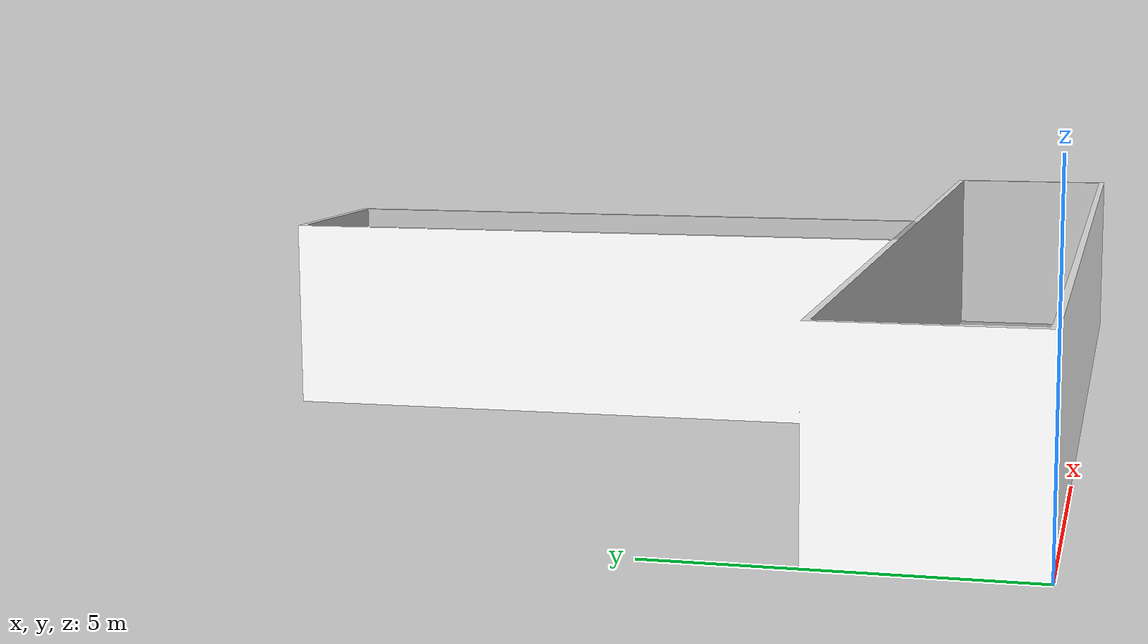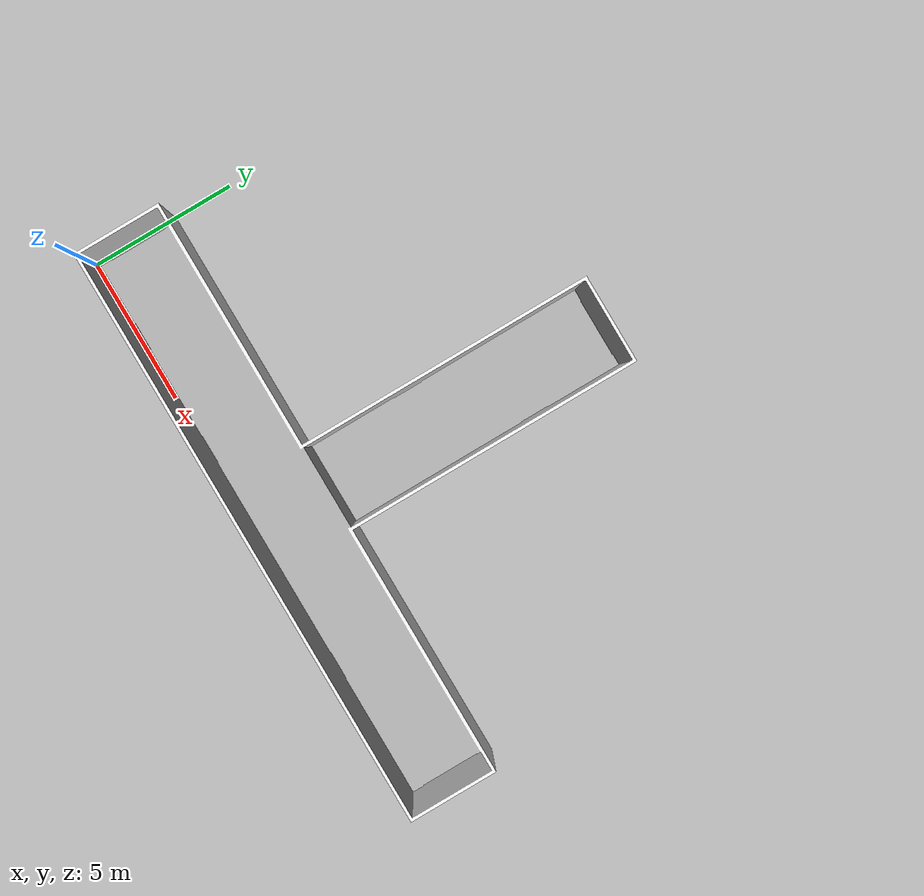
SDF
<?xml version='1.0'?>
<sdf version='1.6'>
  <model name='hallway_closed'>
    <link name='link_0'>
      <visual name='visual'>
        <geometry>
          <mesh>
            <uri>model://hallway_closed/hallway_closed_without_door.dae</uri>
            <scale>1 1 1</scale>
          </mesh>
        </geometry>
        <cast_shadows>0</cast_shadows>
      </visual>
      <collision name='collision'>
        <geometry>
          <mesh>
            <uri>model://hallway_closed/hallway_closed_without_door.dae</uri>
          </mesh>
        </geometry>
      </collision>
    </link>
    <static>1</static>
  </model>
</sdf>
